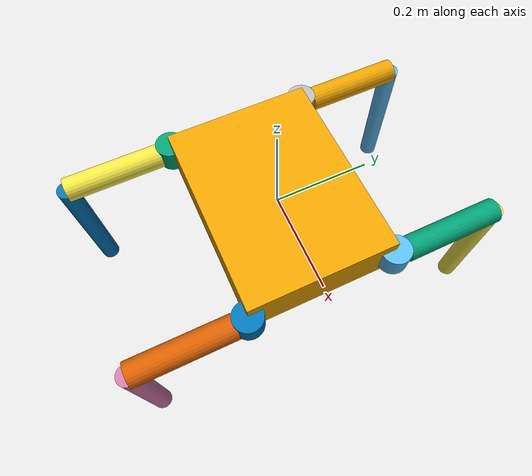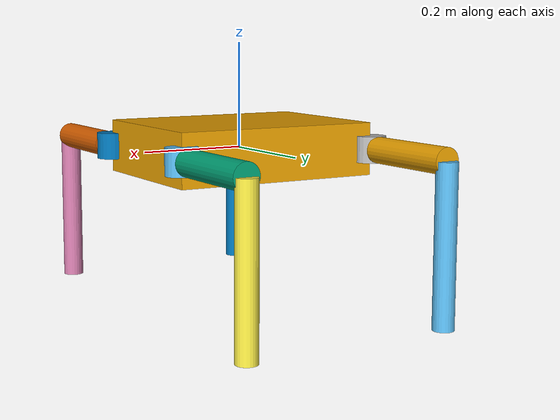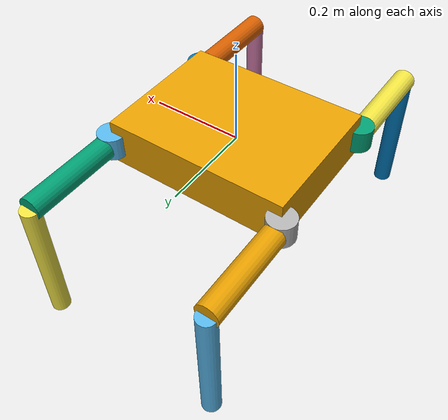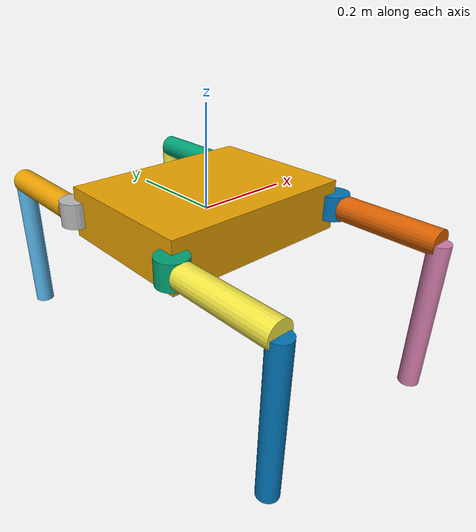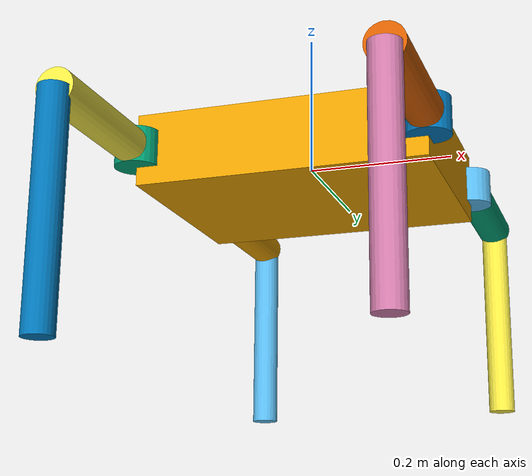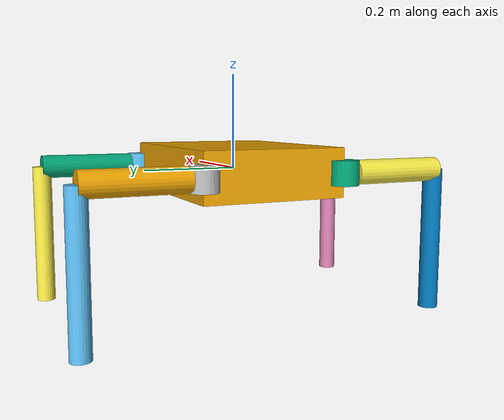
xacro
<?xml version="1.0" encoding="utf-8"?>

<robot xmlns:xacro="http://www.ros.org/wiki/xacro" name="spiderbytes_v5">
<xacro:arg name="ros2_control_yaml" default=""/>
  <!-- ================= BASE ================= -->
  <link name="base_link">
    <visual>
      <geometry><box size="0.4 0.3 0.1"/></geometry>
    </visual>
    <collision>
      <geometry><box size="0.4 0.3 0.1"/></geometry>
    </collision>
    <inertial>
    <origin xyz="0 0 0"/>
    <mass value="5.0"/>
  <inertia
    ixx="0.0417"
    iyy="0.0708"
    izz="0.1042"
    ixy="0"
    ixz="0"
    iyz="0"/>
    </inertial>
</link>

  <!-- FRONT LEFT LEG                                   -->

  <!-- HIP -->
  <link name="hip_fl">
    <visual>
      <geometry><cylinder radius="0.03" length="0.05"/></geometry>
    </visual>
    <collision>
      <geometry><cylinder radius="0.03" length="0.05"/></geometry>
    </collision>
    <inertial>
  <origin xyz="0 0 0"/>
  <mass value="0.2"/>
  <inertia
    ixx="0.000061"
    iyy="0.000061"
    izz="0.000090"
    ixy="0"
    ixz="0"
    iyz="0"/>
</inertial>

  </link>

  <joint name="hip_joint_fl" type="revolute">
    <parent link="base_link"/>
    <child link="hip_fl"/>
    <origin xyz="0.2 0.15 0" rpy="0 0 1.5708"/>
    <axis xyz="0 0 1"/>
    <limit lower="-1.57" upper="1.57" effort="10" velocity="2"/>
  </joint>

  <!-- THIGH -->
  <link name="thigh_fl">
    <visual>
      <origin xyz="0.1 0 0" rpy="0 1.5708 0"/>
      <geometry><cylinder radius="0.025" length="0.2"/></geometry>
    </visual>
    <collision>
      <origin xyz="0.1 0 0"/>
      <geometry><cylinder radius="0.025" length="0.2"/></geometry>
    </collision>
<inertial>
  <origin xyz="0.1 0 0"/>
  <mass value="0.3"/>
  <inertia
    ixx="0.00105"
    iyy="0.00039"
    izz="0.00105"
    ixy="0"
    ixz="0"
    iyz="0"/>
</inertial>

  </link>

  <joint name="knee_joint_fl" type="revolute">
    <parent link="hip_fl"/>
    <child link="thigh_fl"/>
    <origin xyz="0.025 0 0"/>
    <axis xyz="0 1 0"/>
    <limit lower="-1.5708" upper="1.5708" effort="10" velocity="2"/>
  </joint>

  <!-- LEG -->
  <link name="leg_fl">
    <visual>
      <origin xyz="0 0 -0.15"/>
      <geometry><cylinder radius="0.02" length="0.3"/></geometry>
    </visual>
    <collision>
      <origin xyz="0 0 -0.15"/>
      <geometry><cylinder radius="0.02" length="0.3"/></geometry>
    </collision>
  <inertial>
  <origin xyz="0 0 -0.15"/>
  <mass value="0.25"/>
  <inertia
    ixx="0.00190"
    iyy="0.00190"
    izz="0.00005"
    ixy="0"
    ixz="0"
    iyz="0"/>
</inertial>

  </link>

  <joint name="leg_joint_fl" type="revolute">
    <parent link="thigh_fl"/>
    <child link="leg_fl"/>
    <origin xyz="0.2 0 0"/>
    <axis xyz="0 1 0"/>
    <limit lower="-1.5708" upper="1.5708" effort="10" velocity="2"/>
  </joint>

  <!-- OTHER LEGS (FR, RL, RR)                           -->
  <!-- Same kinematics, mirrored origins                -->

  <!-- FRONT RIGHT -->
  <joint name="hip_joint_fr" type="revolute">
    <parent link="base_link"/>
    <child link="hip_fr"/>
    <origin xyz="0.2 -0.15 0" rpy="0 0 -1.5708"/>
    <axis xyz="0 0 1"/>
    <limit lower="-1.5708" upper="1.5708" effort="10" velocity="2"/>
  </joint>
  <link name="hip_fr">
    <visual>
        <geometry>
            <cylinder radius="0.03" length="0.05"/>
        </geometry>
    </visual>
     <collision>
      <geometry><cylinder radius="0.03" length="0.05"/></geometry>
    </collision>
    <inertial>
  <origin xyz="0 0 0"/>
  <mass value="0.2"/>
  <inertia
    ixx="0.000061"
    iyy="0.000061"
    izz="0.000090"
    ixy="0"
    ixz="0"
    iyz="0"/>
</inertial>
    </link>

  <joint name="knee_joint_fr" type="revolute">
    <parent link="hip_fr"/>
    <child link="thigh_fr"/>
    <origin xyz="0.025 0 0"/>
    <axis xyz="0 1 0"/>
    <limit lower="-1.5708" upper="1.5708" effort="10" velocity="2"/>
  </joint>
  <link name="thigh_fr"><visual><origin xyz="0.1 0 0" rpy="0 1.5708 0"/><geometry><cylinder radius="0.025" length="0.2"/></geometry></visual>
   <collision>
      <origin xyz="0.1 0 0"/>
      <geometry><cylinder radius="0.025" length="0.2"/></geometry>
    </collision>
<inertial>
  <origin xyz="0.1 0 0"/>
  <mass value="0.3"/>
  <inertia
    ixx="0.00105"
    iyy="0.00039"
    izz="0.00105"
    ixy="0"
    ixz="0"
    iyz="0"/>
</inertial>
  </link>

  <joint name="leg_joint_fr" type="revolute">
    <parent link="thigh_fr"/>
    <child link="leg_fr"/>
    <origin xyz="0.2 0 0"/>
    <axis xyz="0 1 0"/>
    <limit lower="-1.5708" upper="1.5708" effort="10" velocity="2"/>
  </joint>
  <link name="leg_fr"><visual><origin xyz="0 0 -0.15"/><geometry><cylinder radius="0.02" length="0.3"/></geometry></visual>
    <collision>
      <origin xyz="0 0 -0.15"/>
      <geometry><cylinder radius="0.02" length="0.3"/></geometry>
    </collision>
  <inertial>
  <origin xyz="0 0 -0.15"/>
  <mass value="0.25"/>
  <inertia
    ixx="0.00190"
    iyy="0.00190"
    izz="0.00005"
    ixy="0"
    ixz="0"
    iyz="0"/>
</inertial>
  </link>

  <!-- REAR LEFT -->
  <joint name="hip_joint_rl" type="revolute">
    <parent link="base_link"/>
    <child link="hip_rl"/>
    <origin xyz="-0.2 0.15 0" rpy="0 0 1.5708"/>
    <axis xyz="0 0 1"/>
    <limit lower="-1.5708" upper="1.5708" effort="10" velocity="2"/>
  </joint>
  <link name="hip_rl"><visual><geometry><cylinder radius="0.03" length="0.05"/></geometry></visual>
   <collision>
      <geometry><cylinder radius="0.03" length="0.05"/></geometry>
    </collision>
    <inertial>
  <origin xyz="0 0 0"/>
  <mass value="0.2"/>
  <inertia
    ixx="0.000061"
    iyy="0.000061"
    izz="0.000090"
    ixy="0"
    ixz="0"
    iyz="0"/>
</inertial>
  </link>

  <joint name="knee_joint_rl" type="revolute">
    <parent link="hip_rl"/>
    <child link="thigh_rl"/>
    <origin xyz="0.025 0 0"/>
    <axis xyz="0 1 0"/>
    <limit lower="-1.5708" upper="1.5708" effort="10" velocity="2"/>
  </joint>
  <link name="thigh_rl"><visual><origin xyz="0.1 0 0" rpy="0 1.5708 0"/><geometry><cylinder radius="0.025" length="0.2"/></geometry></visual>
   <collision>
      <origin xyz="0.1 0 0"/>
      <geometry><cylinder radius="0.025" length="0.2"/></geometry>
    </collision>
<inertial>
  <origin xyz="0.1 0 0"/>
  <mass value="0.3"/>
  <inertia
    ixx="0.00105"
    iyy="0.00039"
    izz="0.00105"
    ixy="0"
    ixz="0"
    iyz="0"/>
</inertial>
  </link>

  <joint name="leg_joint_rl" type="revolute">
    <parent link="thigh_rl"/>
    <child link="leg_rl"/>
    <origin xyz="0.2 0 0"/>
    <axis xyz="0 1 0"/>
    <limit lower="-1.5708" upper="1.5708" effort="10" velocity="2"/>
  </joint>
  <link name="leg_rl"><visual><origin xyz="0 0 -0.15"/><geometry><cylinder radius="0.02" length="0.3"/></geometry></visual>
   <collision>
      <origin xyz="0 0 -0.15"/>
      <geometry><cylinder radius="0.02" length="0.3"/></geometry>
    </collision>
  <inertial>
  <origin xyz="0 0 -0.15"/>
  <mass value="0.25"/>
  <inertia
    ixx="0.00190"
    iyy="0.00190"
    izz="0.00005"
    ixy="0"
    ixz="0"
    iyz="0"/>
</inertial>
  </link>

  <!-- REAR RIGHT -->
  <joint name="hip_joint_rr" type="revolute">
    <parent link="base_link"/>
    <child link="hip_rr"/>
    <origin xyz="-0.2 -0.15 0" rpy="0 0 -1.5708"/>
    <axis xyz="0 0 1"/>
    <limit lower="-1.5708" upper="1.5708" effort="10" velocity="2"/>
  </joint>
  <link name="hip_rr"><visual><geometry><cylinder radius="0.03" length="0.05"/></geometry></visual>
    <collision>
      <geometry><cylinder radius="0.03" length="0.05"/></geometry>
    </collision>
    <inertial>
  <origin xyz="0 0 0"/>
  <mass value="0.2"/>
  <inertia
    ixx="0.000061"
    iyy="0.000061"
    izz="0.000090"
    ixy="0"
    ixz="0"
    iyz="0"/>
</inertial>
  </link>

  <joint name="knee_joint_rr" type="revolute">
    <parent link="hip_rr"/>
    <child link="thigh_rr"/>
    <origin xyz="0.025 0 0"/>
    <axis xyz="0 1 0"/>
    <limit lower="-1.5708" upper="1.5708" effort="10" velocity="2"/>
  </joint>
  <link name="thigh_rr"><visual><origin xyz="0.1 0 0" rpy="0 1.5708 0"/><geometry><cylinder radius="0.025" length="0.2"/></geometry></visual>
   <collision>
      <origin xyz="0.1 0 0"/>
      <geometry><cylinder radius="0.025" length="0.2"/></geometry>
    </collision>
<inertial>
  <origin xyz="0.1 0 0"/>
  <mass value="0.3"/>
  <inertia
    ixx="0.00105"
    iyy="0.00039"
    izz="0.00105"
    ixy="0"
    ixz="0"
    iyz="0"/>
</inertial>
  </link>

  <joint name="leg_joint_rr" type="revolute">
    <parent link="thigh_rr"/>
    <child link="leg_rr"/>
    <origin xyz="0.2 0 0"/>
    <axis xyz="0 1 0"/>
    <limit lower="-1.5708" upper="1.5708" effort="10" velocity="2"/>
  </joint>
  <link name="leg_rr"><visual><origin xyz="0 0 -0.15"/><geometry><cylinder radius="0.02" length="0.3"/></geometry></visual>
    <collision>
      <origin xyz="0 0 -0.15"/>
      <geometry><cylinder radius="0.02" length="0.3"/></geometry>
    </collision>
  <inertial>
  <origin xyz="0 0 -0.15"/>
  <mass value="0.25"/>
  <inertia
    ixx="0.00190"
    iyy="0.00190"
    izz="0.00005"
    ixy="0"
    ixz="0"
    iyz="0"/>
</inertial>
  </link>

  <!-- ========================= GAZEBO CONTACT (FEET) ========================= -->
  <gazebo reference="link_leg_1"><mu1>1.2</mu1><mu2>1.2</mu2></gazebo>
  <gazebo reference="link_leg_2"><mu1>1.2</mu1><mu2>1.2</mu2></gazebo>
  <gazebo reference="link_leg_3"><mu1>1.2</mu1><mu2>1.2</mu2></gazebo>
  <gazebo reference="link_leg_4"><mu1>1.2</mu1><mu2>1.2</mu2></gazebo>

  <!-- ========================= ROS2 CONTROL ========================= -->
  <ros2_control name="spiderbytes_system" type="system">
    <hardware>
      <plugin>gz_ros2_control/GazeboSimSystem</plugin>
    </hardware>

    <joint name="joint_rotation_1"><command_interface name="position"/><state_interface name="position"/><state_interface name="velocity"/></joint>
    <joint name="joint_rotation_2"><command_interface name="position"/><state_interface name="position"/><state_interface name="velocity"/></joint>
    <joint name="joint_rotation_3"><command_interface name="position"/><state_interface name="position"/><state_interface name="velocity"/></joint>
    <joint name="joint_rotation_4"><command_interface name="position"/><state_interface name="position"/><state_interface name="velocity"/></joint>

    <joint name="joint_limb_1"><command_interface name="position"/><state_interface name="position"/><state_interface name="velocity"/></joint>
    <joint name="joint_limb_2"><command_interface name="position"/><state_interface name="position"/><state_interface name="velocity"/></joint>
    <joint name="joint_limb_3"><command_interface name="position"/><state_interface name="position"/><state_interface name="velocity"/></joint>
    <joint name="joint_limb_4"><command_interface name="position"/><state_interface name="position"/><state_interface name="velocity"/></joint>

    <joint name="joint_leg_1"><command_interface name="position"/><state_interface name="position"/><state_interface name="velocity"/></joint>
    <joint name="joint_leg_2"><command_interface name="position"/><state_interface name="position"/><state_interface name="velocity"/></joint>
    <joint name="joint_leg_3"><command_interface name="position"/><state_interface name="position"/><state_interface name="velocity"/></joint>
    <joint name="joint_leg_4"><command_interface name="position"/><state_interface name="position"/><state_interface name="velocity"/></joint>
  </ros2_control>
  <gazebo>
    <plugin filename="gz_ros2_control-system" name="gz_ros2_control::GazeboSimROS2ControlPlugin">
      <parameters>$(arg ros2_control_yaml)</parameters>
    </plugin>
  </gazebo>
</robot>
